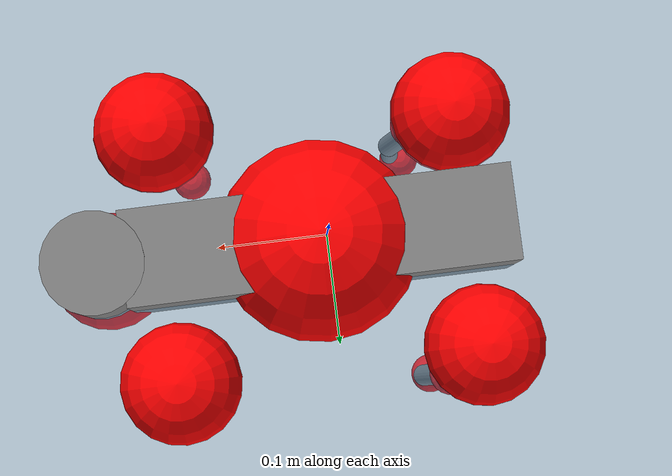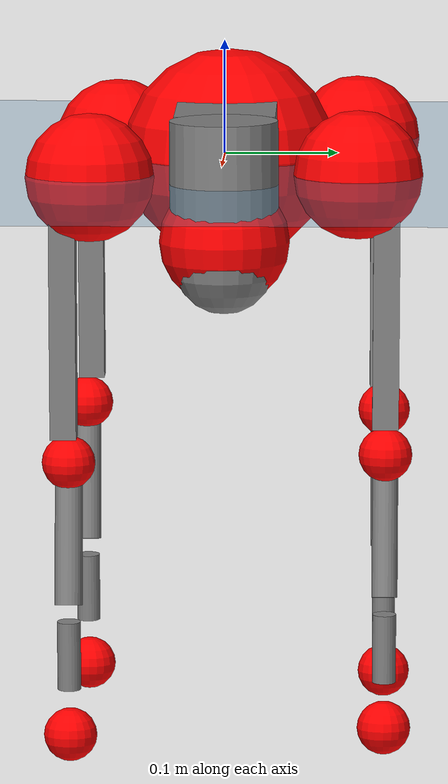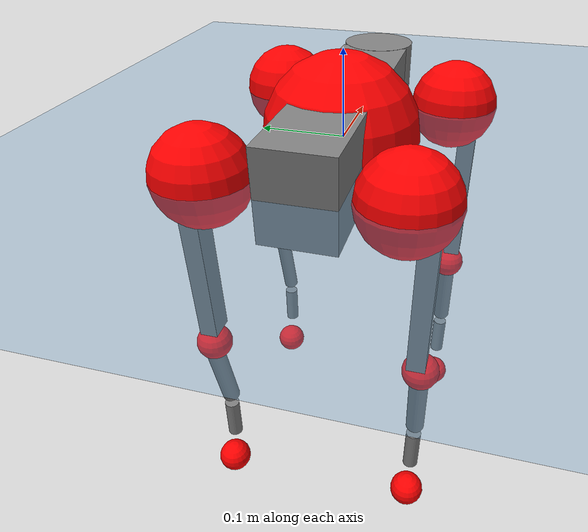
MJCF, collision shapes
<mujoco model="go2">
  <compiler angle="radian" assetdir="assets" balanceinertia="true" inertiafromgeom="false"/>

  <option timestep="0.005" density="1.2" viscosity="2e-05"/>

  <size nkey="1"/>

  <visual>
    <quality shadowsize="8192"/>
    <map shadowclip="0.5"/>
  </visual>

  <default>
    <default class="/">
      <geom contype="0" conaffinity="0" group="1" solref="-1000 -80"/>
      <site size="0.01 0.005 0.005" group="5"/>
      <general forcelimited="true" biastype="affine" gainprm="20" biasprm="0 -20 -0.5"/>
      <default class="go2">
        <joint armature="0.01" damping="0.01" frictionloss="0.2"/>
        <geom condim="1" margin="0.001"/>
        <default class="visual">
          <geom type="mesh" group="2"/>
        </default>
        <default class="collision">
          <geom group="3"/>
          <default class="foot">
            <geom size="0.022 0 0" condim="6" priority="1" friction="0.8 0.02 0.01" solimp="0.015 1 0.022"/>
          </default>
        </default>
        <default class="reward_collision_sphere">
          <geom group="5" rgba="1 0 0 1"/>
        </default>
      </default>
    </default>
  </default>

  <asset>
    <texture type="skybox" colorspace="auto" name="//unnamed_texture_0" builtin="gradient" rgb1="0.95 0.95 0.95" rgb2="0.95 0.95 0.95" width="100" height="600"/>
    <texture type="2d" colorspace="auto" name="texplane" builtin="checker" rgb1="0.345 0.575 0.748" rgb2="0.345 0.575 0.748" markrgb="1 1 1" width="512" height="512"/>
    <material name="MatPlane" class="/" texture="texplane" texuniform="true" texrepeat="2 2" specular="0.9"/>
    <material name="metal" class="/" rgba="0.9 0.95 0.95 1"/>
    <material name="black" class="/" rgba="0 0 0 1"/>
    <material name="white" class="/"/>
    <material name="gray" class="/" rgba="0.671705 0.692426 0.77427 1"/>
    <mesh name="base_0" class="/" file="base_0.obj"/>
    <mesh name="base_1" class="/" file="base_1.obj"/>
    <mesh name="base_2" class="/" file="base_2.obj"/>
    <mesh name="base_3" class="/" file="base_3.obj"/>
    <mesh name="base_4" class="/" file="base_4.obj"/>
    <mesh name="hip_0" class="/" file="hip_0.obj"/>
    <mesh name="hip_1" class="/" file="hip_1.obj"/>
    <mesh name="thigh_0" class="/" file="thigh_0.obj"/>
    <mesh name="thigh_1" class="/" file="thigh_1.obj"/>
    <mesh name="thigh_mirror_0" class="/" file="thigh_mirror_0.obj"/>
    <mesh name="thigh_mirror_1" class="/" file="thigh_mirror_1.obj"/>
    <mesh name="calf_0" class="/" file="calf_0.obj"/>
    <mesh name="calf_1" class="/" file="calf_1.obj"/>
    <mesh name="calf_mirror_0" class="/" file="calf_mirror_0.obj"/>
    <mesh name="calf_mirror_1" class="/" file="calf_mirror_1.obj"/>
    <mesh name="foot" class="/" file="foot.obj"/>
  </asset>

  <worldbody>
    <geom name="floor" class="/" size="100 100 0.125" type="plane" group="0" material="MatPlane"/>
    <light name="toplight_shadow" class="/" pos="0 0 5" dir="0.0990148 0.0990148 -0.990148" type="directional" ambient="0.04 0.04 0.04" diffuse="0.55 0.55 0.55" specular="0.12 0.12 0.12"/>
    <light name="toplight_fill" class="/" pos="0 0 5" dir="0.0990148 0.0990148 -0.990148" type="directional" castshadow="false" ambient="0.04 0.04 0.04" diffuse="0.3 0.3 0.3" specular="0.08 0.08 0.08"/>
    <body name="trunk" childclass="go2" pos="0.00817524 0.00412491 0.000558165" quat="0.999996 0.00275816 0.000271279 0.000457274">
      <inertial pos="0.0237365 -0.00146206 -0.00721381" quat="-0.00119708 0.713893 -0.00386093 0.700243" mass="5.50054" diaginertia="0.0182025 0.0773706 0.0412136"/>
      <joint name="//unnamed_joint_0" type="free" armature="0" damping="0" frictionloss="0"/>
      <geom name="//unnamed_geom_1" class="visual" material="black" mesh="base_0"/>
      <geom name="//unnamed_geom_2" class="visual" material="black" mesh="base_1"/>
      <geom name="//unnamed_geom_3" class="visual" material="black" mesh="base_2"/>
      <geom name="//unnamed_geom_4" class="visual" material="white" mesh="base_3"/>
      <geom name="//unnamed_geom_5" class="visual" material="gray" mesh="base_4"/>
      <geom name="trunk_1" class="collision" size="0.175001 0.0434943 0.0530305" type="box"/>
      <geom name="trunk_2" class="collision" size="0.046518 0.0418662" pos="0.200993 0 0.011336" type="cylinder"/>
      <geom name="trunk_3" class="collision" size="0.0437269" pos="0.206635 0 -0.068016"/>
      <geom name="//unnamed_geom_9" class="reward_collision_sphere" size="0.0930359"/>
      <geom name="//unnamed_geom_10" class="reward_collision_sphere" size="0.0558216" pos="0.197467 0 -0.051012"/>
      <site name="imu" pos="-0.0102051 -0.0012576 0.0443967" size="0.00930359"/>
      <camera name="track" pos="0 -1.90448 0" quat="0.707107 0.707107 0 0" mode="trackcom"/>
      <camera name="ego_camera" pos="0.220035 0 0.051012" quat="-0.5 -0.5 0.5 0.5"/>
      <body name="FL_hip" pos="0.139662 0.047581 -0.000912455" quat="0.999992 -0.00382048 -0.00138636 0.000362402">
        <inertial pos="0.00527209 0.00396337 0.00204353" quat="0.493169 0.506209 0.507247 0.493191" mass="0.489093" diaginertia="0.000138457 0.000468811 0.000801131"/>
        <joint name="FL_hip_joint" pos="0 0 0" axis="0.999994 -0.00337761 0.000853677" stiffness="0.00857916" range="-1.08485 1.17548" armature="0.00700577" damping="0.0267707" frictionloss="0.17774"/>
        <geom name="//unnamed_geom_11" class="visual" material="metal" mesh="hip_0"/>
        <geom name="//unnamed_geom_12" class="visual" material="gray" mesh="hip_1"/>
        <geom name="//unnamed_geom_13" class="collision" size="0.0427965 0.0186072" pos="0 0.0761791 0" quat="0.707107 0.707107 0 0" type="cylinder"/>
        <geom name="//unnamed_geom_14" class="reward_collision_sphere" size="0.0558216" pos="0 0.0666567 0"/>
        <body name="FL_thigh" pos="0.000187558 0.091563 -0.000389197" quat="1 -0.000810828 -0.000408125 0.000199947">
          <inertial pos="-0.0107441 -0.0192869 -0.0440065" quat="0.830966 0.0818347 -0.0106994 0.550168" mass="0.921919" diaginertia="0.00101707 0.00464332 0.00166411"/>
          <joint name="FL_thigh_joint" pos="0 0 0" axis="-0.00301681 0.999923 -0.0120198" range="-1.45641 3.39055" armature="0.0069692" damping="0.0475954" frictionloss="0.169927"/>
          <geom name="//unnamed_geom_15" class="visual" material="metal" mesh="thigh_0"/>
          <geom name="//unnamed_geom_16" class="visual" material="gray" mesh="thigh_1"/>
          <geom name="//unnamed_geom_17" class="collision" size="0.0990833 0.0113969 0.0158161" pos="0 0 -0.120728" quat="0.707107 0 0.707107 0" type="box"/>
          <body name="FL_calf" pos="-0.000162625 0.000183146 -0.243543" quat="0.999999 0.000249914 -0.00125324 -0.00116592">
            <inertial pos="0.00163003 -0.00263559 -0.1556" quat="0.687005 -0.000733272 -0.00972396 0.726587" mass="0.196081" diaginertia="0.000259738 0.00112044 0.000104151"/>
            <joint name="FL_calf_joint" pos="0 0 0" axis="0.00429123 0.999978 0.00500957" range="-2.77004 -0.716776" armature="0.0104918" damping="0.00462829" frictionloss="0.16852"/>
            <geom name="//unnamed_geom_18" class="visual" material="gray" mesh="calf_0"/>
            <geom name="//unnamed_geom_19" class="visual" material="black" mesh="calf_1"/>
            <geom name="FL_calf0" class="collision" size="0.0111643 0.0558216" pos="0.00564191 0 -0.068016" quat="0.994493 0 -0.104807 0" type="cylinder"/>
            <geom name="//unnamed_geom_21" class="collision" size="0.010234 0.0302367" pos="0.0141048 0 -0.167773" quat="0.999688 0 0.0249974 0" type="cylinder"/>
            <geom name="//unnamed_geom_22" class="visual" pos="0 0 -0.241457" quat="1 0 0 0" material="black" mesh="foot"/>
            <geom name="FL_foot" class="foot" size="0.0219625" pos="-0.00141048 0 -0.241457"/>
            <geom name="//unnamed_geom_24" class="reward_collision_sphere" size="0.023259"/>
            <geom name="//unnamed_geom_25" class="reward_collision_sphere" size="0.023259" pos="-0.00141048 0 -0.241457"/>
            <site name="FL_foot" class="foot" pos="-0.00141048 0 -0.241457" size="0.00930359"/>
          </body>
        </body>
      </body>
      <body name="FR_hip" pos="0.138049 -0.0507206 -0.00328487" quat="1 0.000515516 0.00016891 0.000222452">
        <inertial pos="-0.00917984 -0.00100045 -0.000783968" quat="0.504096 0.507985 0.492902 0.494859" mass="0.45231" diaginertia="0.000143114 0.000435881 0.000888074"/>
        <joint name="FR_hip_joint" pos="0 0 0" axis="0.999998 -0.00215452 0.000523428" stiffness="0.0419513" range="-1.0988 1.05419" armature="0.013224" damping="0" frictionloss="0.108185"/>
        <geom name="//unnamed_geom_26" class="visual" pos="0 -1.57994e-09 -6.77667e-08" quat="4.63268e-05 1 0 0" material="metal" mesh="hip_0"/>
        <geom name="//unnamed_geom_27" class="visual" pos="0 -2.56126e-09 1.67613e-07" quat="4.63268e-05 1 0 0" material="gray" mesh="hip_1"/>
        <geom name="//unnamed_geom_28" class="collision" size="0.0427965 0.0186072" pos="0 -0.0761791 0" quat="0.707107 0.707107 0 0" type="cylinder"/>
        <geom name="//unnamed_geom_29" class="reward_collision_sphere" size="0.0558216" pos="0 -0.0666567 0"/>
        <body name="FR_thigh" pos="0.00139548 -0.0904035 -0.00709935" quat="0.999993 -0.00160007 0.000691182 -0.00343645">
          <inertial pos="0.00181175 0.0301279 -0.0376514" quat="0.553449 -0.011347 0.0876624 0.828179" mass="1.03758" diaginertia="0.00104987 0.0046485 0.00176379"/>
          <joint name="FR_thigh_joint" pos="0 0 0" axis="-0.00377224 -0.999972 -0.00650601" range="-3.49925 1.57729" armature="0.00922411" damping="0" frictionloss="0.177263"/>
          <geom name="//unnamed_geom_30" class="visual" material="metal" mesh="thigh_mirror_0"/>
          <geom name="//unnamed_geom_31" class="visual" material="gray" mesh="thigh_mirror_1"/>
          <geom name="//unnamed_geom_32" class="collision" size="0.0990833 0.0113969 0.0158161" pos="0 0 -0.120728" quat="0.707107 0 0.707107 0" type="box"/>
          <body name="FR_calf" pos="-0.00352379 0.00383084 -0.242276" quat="1 2.5173e-05 0.000337117 -0.000264479">
            <inertial pos="0.00237539 0.00148536 -0.161122" quat="0.704045 0.00438561 0.00453343 0.710127" mass="0.181991" diaginertia="0.000222215 0.00112124 9.43581e-05"/>
            <joint name="FR_calf_joint" pos="0 0 0" axis="0.0245081 -0.999566 0.0163645" stiffness="0.0116216" range="0.831993 2.68902" armature="0.0102461" damping="0" frictionloss="0.194684"/>
            <geom name="//unnamed_geom_33" class="visual" material="gray" mesh="calf_mirror_0"/>
            <geom name="//unnamed_geom_34" class="visual" material="black" mesh="calf_mirror_1"/>
            <geom name="FR_calf0" class="collision" size="0.0120947 0.0558216" pos="0.00705239 0 -0.068016" quat="0.995004 0 -0.0998334 0" type="cylinder"/>
            <geom name="//unnamed_geom_36" class="collision" size="0.010234 0.0302367" pos="0.0141048 0 -0.167773" quat="0.999688 0 0.0249974 0" type="cylinder"/>
            <geom name="//unnamed_geom_37" class="visual" pos="0 0 -0.241457" quat="1 0 0 0" material="black" mesh="foot"/>
            <geom name="FR_foot" class="foot" size="0.0188872" pos="-0.00141048 0 -0.241457"/>
            <geom name="//unnamed_geom_39" class="reward_collision_sphere" size="0.023259"/>
            <geom name="//unnamed_geom_40" class="reward_collision_sphere" size="0.023259" pos="-0.00141048 0 -0.241457"/>
            <site name="FR_foot" class="foot" pos="-0.00141048 0 -0.241457" size="0.00930359"/>
          </body>
        </body>
      </body>
      <body name="RL_hip" pos="-0.13839 0.0462166 -0.00251596" quat="0.999988 -0.00442304 -0.00231865 -0.000193626">
        <inertial pos="-0.00427789 0.000903974 0.00194859" quat="0.505896 0.498589 0.497021 0.498446" mass="0.567182" diaginertia="0.000158094 0.000450335 0.000909536"/>
        <joint name="RL_hip_joint" pos="0 0 0" axis="-0.999998 0.00185878 7.5319e-05" range="-1.08109 1.08071" armature="0.00915892" damping="0" frictionloss="0.181618"/>
        <geom name="//unnamed_geom_41" class="visual" pos="3.7317e-09 0 7.31499e-07" quat="4.63268e-05 0 1 0" material="metal" mesh="hip_0"/>
        <geom name="//unnamed_geom_42" class="visual" pos="6.04953e-09 0 6.48735e-07" quat="4.63268e-05 0 1 0" material="gray" mesh="hip_1"/>
        <geom name="//unnamed_geom_43" class="collision" size="0.0427965 0.0186072" pos="0 0.0761791 0" quat="0.707107 0.707107 0 0" type="cylinder"/>
        <geom name="//unnamed_geom_44" class="reward_collision_sphere" size="0.0558216" pos="0 0.0666567 0"/>
        <body name="RL_thigh" pos="0.00760133 0.0899762 -0.00440163" quat="0.999992 0.00174376 -0.00190338 0.00290291">
          <inertial pos="-0.0041228 -0.0226525 -0.0387738" quat="0.811841 0.0995645 -0.0172419 0.575069" mass="0.993843" diaginertia="0.0010418 0.00485463 0.00164064"/>
          <joint name="RL_thigh_joint" pos="0 0 0" axis="-0.0101887 0.999938 -0.00450459" stiffness="0.015522" range="-0.556441 4.47548" armature="0.0108447" damping="0.0479998" frictionloss="0.187153"/>
          <geom name="//unnamed_geom_45" class="visual" material="metal" mesh="thigh_0"/>
          <geom name="//unnamed_geom_46" class="visual" material="gray" mesh="thigh_1"/>
          <geom name="//unnamed_geom_47" class="collision" size="0.0990833 0.0113969 0.0158161" pos="0 0 -0.120728" quat="0.707107 0 0.707107 0" type="box"/>
          <body name="RL_calf" pos="-0.00150081 0.00166103 -0.242838" quat="1 0.000106166 -0.000120072 0.000155841">
            <inertial pos="0.00440098 -0.000190584 -0.162911" quat="0.711842 0.000287343 -0.00571784 0.702316" mass="0.192665" diaginertia="0.00026115 0.00117875 9.77558e-05"/>
            <joint name="RL_calf_joint" pos="0 0 0" axis="0.0141848 0.999874 -0.00712716" range="-2.74105 -0.833993" armature="0.0101055" damping="0.0425506" frictionloss="0.172056"/>
            <geom name="//unnamed_geom_48" class="visual" material="gray" mesh="calf_0"/>
            <geom name="//unnamed_geom_49" class="visual" material="black" mesh="calf_1"/>
            <geom name="RL_calf0" class="collision" size="0.0120947 0.0558216" pos="0.00705239 0 -0.068016" quat="0.995004 0 -0.0998334 0" type="cylinder"/>
            <geom name="//unnamed_geom_51" class="collision" size="0.010234 0.0302367" pos="0.0141048 0 -0.167773" quat="0.999688 0 0.0249974 0" type="cylinder"/>
            <geom name="//unnamed_geom_52" class="visual" pos="0 0 -0.241457" quat="1 0 0 0" material="black" mesh="foot"/>
            <geom name="RL_foot" class="foot" size="0.0174959" pos="-0.00141048 0 -0.241457"/>
            <geom name="//unnamed_geom_54" class="reward_collision_sphere" size="0.023259"/>
            <geom name="//unnamed_geom_55" class="reward_collision_sphere" size="0.023259" pos="-0.00141048 0 -0.241457"/>
            <site name="RL_foot" class="foot" pos="-0.00141048 0 -0.241457" size="0.00930359"/>
          </body>
        </body>
      </body>
      <body name="RR_hip" pos="-0.135476 -0.0362484 -0.00511401" quat="0.999998 -0.000633968 0.000346185 0.00191497">
        <inertial pos="0.00440302 -0.0072936 -0.000801496" quat="0.521591 0.476416 0.483217 0.517177" mass="0.534233" diaginertia="0.000146607 0.000440107 0.000890882"/>
        <joint name="RR_hip_joint" pos="0 0 0" axis="-0.999949 -0.00916853 -0.00428326" range="-1.01027 1.03002" armature="0.00521379" damping="0" frictionloss="0.246492"/>
        <geom name="//unnamed_geom_56" class="visual" pos="-3.72315e-09 -1.57994e-09 7.99266e-07" quat="2.14617e-09 4.63268e-05 4.63268e-05 -1" material="metal" mesh="hip_0"/>
        <geom name="//unnamed_geom_57" class="visual" pos="-6.07068e-09 -2.56127e-09 4.81122e-07" quat="2.14617e-09 4.63268e-05 4.63268e-05 -1" material="gray" mesh="hip_1"/>
        <geom name="//unnamed_geom_58" class="collision" size="0.0427965 0.0186072" pos="0 -0.0761791 0" quat="0.707107 0.707107 0 0" type="cylinder"/>
        <geom name="//unnamed_geom_59" class="reward_collision_sphere" size="0.0558216" pos="0 -0.0666567 0"/>
        <body name="RR_thigh" pos="0.00366234 -0.0918941 0.00605318" quat="1 0.000636032 0.000408913 -0.000330637">
          <inertial pos="-0.00249038 0.0229019 -0.0353181" quat="0.552672 -0.0202644 0.0846742 0.828839" mass="0.950164" diaginertia="0.00105345 0.00456736 0.00180017"/>
          <joint name="RR_thigh_joint" pos="0 0 0" axis="0.00903741 -0.999019 -0.0433463" stiffness="0.0184778" range="-4.3937 0.463515" armature="0.0082758" damping="0.00500782" frictionloss="0.178534"/>
          <geom name="//unnamed_geom_60" class="visual" material="metal" mesh="thigh_mirror_0"/>
          <geom name="//unnamed_geom_61" class="visual" material="gray" mesh="thigh_mirror_1"/>
          <geom name="//unnamed_geom_62" class="collision" size="0.0990833 0.0113969 0.0158161" pos="0 0 -0.120728" quat="0.707107 0 0.707107 0" type="box"/>
          <body name="RR_calf" pos="0.0101894 -0.00435382 -0.242827" quat="1 0.000317297 0.000775207 9.24703e-05">
            <inertial pos="-0.00504416 0.000766546 -0.162667" quat="0.701593 -0.00462168 0.000876603 0.712563" mass="0.19074" diaginertia="0.000279272 0.00133876 0.000104986"/>
            <joint name="RR_calf_joint" pos="0 0 0" axis="0.000785866 -0.999988 0.00484152" range="0.74922 2.52757" armature="0.0119573" damping="0.0183044" frictionloss="0.192193"/>
            <geom name="//unnamed_geom_63" class="visual" material="gray" mesh="calf_mirror_0"/>
            <geom name="//unnamed_geom_64" class="visual" material="black" mesh="calf_mirror_1"/>
            <geom name="RR_calf0" class="collision" size="0.0120947 0.0558216" pos="0.00705239 0 -0.068016" quat="0.995004 0 -0.0998334 0" type="cylinder"/>
            <geom name="//unnamed_geom_66" class="collision" size="0.010234 0.0302367" pos="0.0141048 0 -0.167773" quat="0.999688 0 0.0249974 0" type="cylinder"/>
            <geom name="//unnamed_geom_67" class="visual" pos="0 0 -0.241457" quat="1 0 0 0" material="black" mesh="foot"/>
            <geom name="RR_foot" class="foot" size="0.0180818" pos="-0.00141048 0 -0.241457"/>
            <geom name="//unnamed_geom_69" class="reward_collision_sphere" size="0.023259"/>
            <geom name="//unnamed_geom_70" class="reward_collision_sphere" size="0.023259" pos="-0.00141048 0 -0.241457"/>
            <site name="RR_foot" class="foot" pos="-0.00141048 0 -0.241457" size="0.00930359"/>
          </body>
        </body>
      </body>
    </body>
  </worldbody>

  <contact>
    <pair class="/" geom1="floor" geom2="FL_foot" name="//unnamed_contact_0"/>
    <pair class="/" geom1="floor" geom2="FR_foot" name="//unnamed_contact_1"/>
    <pair class="/" geom1="floor" geom2="RL_foot" name="//unnamed_contact_2"/>
    <pair class="/" geom1="floor" geom2="RR_foot" name="//unnamed_contact_3"/>
  </contact>

  <actuator>
    <general name="FL_hip" class="/" joint="FL_hip_joint" forcerange="-20.2641 20.2641" gainprm="18.8948" biasprm="0 -18.8948 -0.459511"/>
    <general name="FL_thigh" class="/" joint="FL_thigh_joint" forcerange="-23.7374 23.7374" gainprm="18.8948" biasprm="0 -18.8948 -0.459511"/>
    <general name="FL_calf" class="/" joint="FL_calf_joint" forcerange="-40.9369 40.9369" gainprm="18.8948" biasprm="0 -18.8948 -0.459511"/>
    <general name="FR_hip" class="/" joint="FR_hip_joint" forcerange="-14.4443 14.4443" gainprm="18.8948" biasprm="0 -18.8948 -0.459511"/>
    <general name="FR_thigh" class="/" joint="FR_thigh_joint" forcerange="-22.6362 22.6362" gainprm="18.8948" biasprm="0 -18.8948 -0.459511"/>
    <general name="FR_calf" class="/" joint="FR_calf_joint" forcerange="-49.7444 49.7444" gainprm="18.8948" biasprm="0 -18.8948 -0.459511"/>
    <general name="RL_hip" class="/" joint="RL_hip_joint" forcerange="-20.4828 20.4828" gainprm="18.8948" biasprm="0 -18.8948 -0.459511"/>
    <general name="RL_thigh" class="/" joint="RL_thigh_joint" forcerange="-20.6325 20.6325" gainprm="18.8948" biasprm="0 -18.8948 -0.459511"/>
    <general name="RL_calf" class="/" joint="RL_calf_joint" forcerange="-46.8228 46.8228" gainprm="18.8948" biasprm="0 -18.8948 -0.459511"/>
    <general name="RR_hip" class="/" joint="RR_hip_joint" forcerange="-23.765 23.765" gainprm="18.8948" biasprm="0 -18.8948 -0.459511"/>
    <general name="RR_thigh" class="/" joint="RR_thigh_joint" forcerange="-21.8421 21.8421" gainprm="18.8948" biasprm="0 -18.8948 -0.459511"/>
    <general name="RR_calf" class="/" joint="RR_calf_joint" forcerange="-30.7748 30.7748" gainprm="18.8948" biasprm="0 -18.8948 -0.459511"/>
  </actuator>

  <sensor>
    <gyro site="imu" name="imu_angular_velocity"/>
    <velocimeter site="imu" name="imu_linear_velocity"/>
    <framelinvel objtype="site" objname="FL_foot" name="FL_foot_global_linear_velocity"/>
    <framelinvel objtype="site" objname="FR_foot" name="FR_foot_global_linear_velocity"/>
    <framelinvel objtype="site" objname="RL_foot" name="RL_foot_global_linear_velocity"/>
    <framelinvel objtype="site" objname="RR_foot" name="RR_foot_global_linear_velocity"/>
  </sensor>

  <keyframe>
    <key name="home" qpos="0 0 0.325 1 0 0 0 0.1 0.8 -1.5 -0.1 -0.8 1.5 -0.1 0.8 -1.5 0.1 -0.8 1.5"/>
  </keyframe>
</mujoco>
